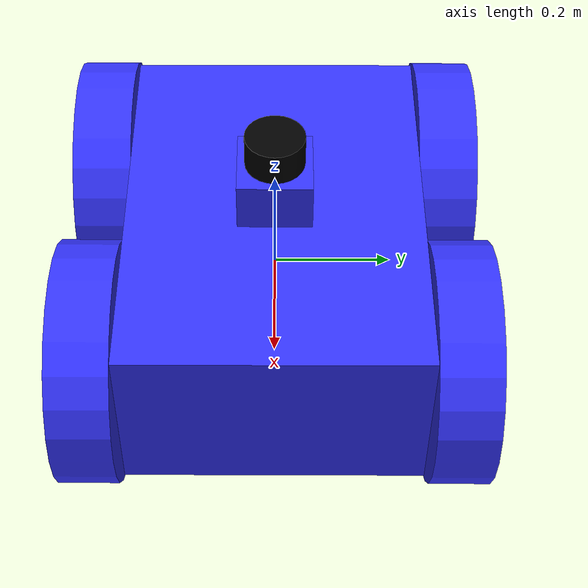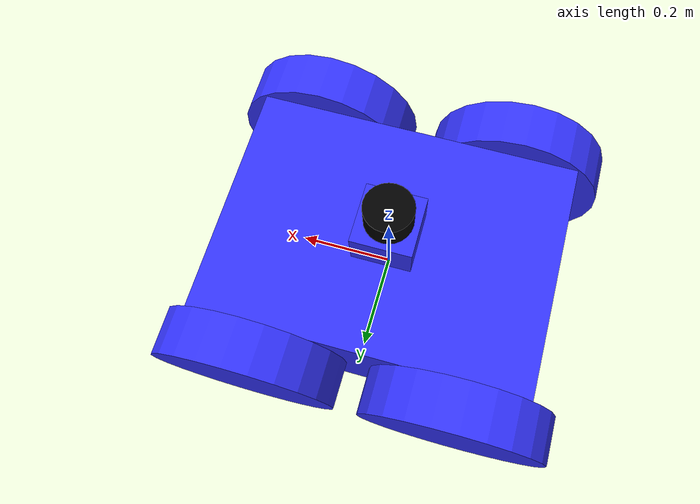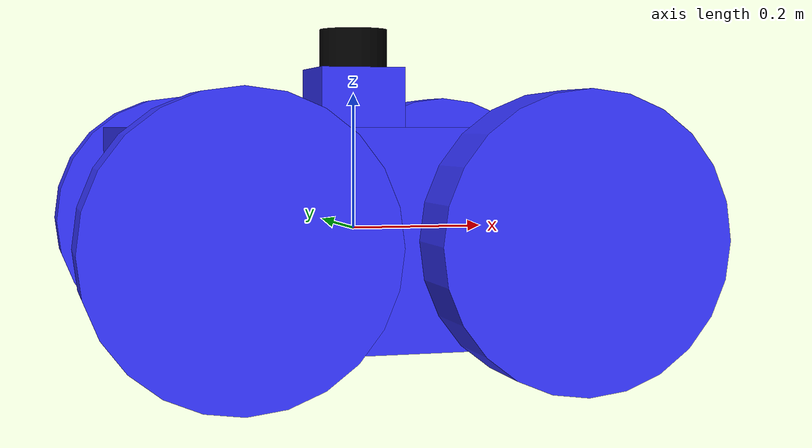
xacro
<?xml version="1.0"?>
<robot xmlns:xacro="http://www.ros.org/wiki/xacro" name="mybot">

    <xacro:include filename="$(find mybot)/urdf/skid_steering.xacro" />
    <xacro:include filename="$(find mybot)/urdf/robot_colors.xacro" />
    <xacro:include filename="$(find mybot)/urdf/lidar.xacro" />

    <!-- Wheels -->
    <xacro:macro name="wheel" params="prefix x y rpy axis">
        <joint name="${prefix}_wheel_joint" type="continuous">
            <parent link="base_link"/>
            <child link="${prefix}_wheel"/>
            <origin xyz="${x} ${y} 0" rpy="${rpy} 0 0"/>
            <axis xyz="${axis}"/>
        </joint>

        <link name="${prefix}_wheel">
            <visual>
                <geometry>
                    <cylinder radius="0.2" length="0.1"/>
                </geometry>
                <material name="blue"/>
            </visual>
            <collision>
                <geometry>
                    <cylinder radius="0.2" length="0.1"/>
                </geometry>
            </collision>
            <inertial>
                <origin xyz="0 0 0" rpy="0 0 0"/>
                <mass value="1.0"/>
                <inertia ixx="0.01083" ixy="0.0" ixz="0.0" iyy="0.01083" iyz="0.0" izz="0.02"/>
            </inertial>
        </link>
    </xacro:macro>

    <xacro:wheel prefix="front_left" x="0.225" y="0.3" rpy="-1.5708" axis="0 0 1"/>
    <xacro:wheel prefix="front_right" x="0.225" y="-0.3" rpy="1.5708" axis="0 0 -1"/>
    <xacro:wheel prefix="rear_left" x="-0.225" y="0.3" rpy="-1.5708" axis="0 0 1"/>
    <xacro:wheel prefix="rear_right" x="-0.225" y="-0.3" rpy="1.5708" axis="0 0 -1"/>

    <!-- footprint -->
    <link name="robot_footprint"/>
    <joint name="robot_footprint_joint" type="fixed">
        <origin xyz="0 0 0" rpy="0 0 0" />
        <parent link="robot_footprint" />
        <child link="base_link" />
    </joint>

    <!-- BASE LINK -->
    <link name="base_link">
        <inertial>
            <origin xyz="0.0 0.0 0.0" rpy="0.0 0.0 1.5708"/>
            <mass value="15.0"/>
            <inertia ixx="0.725" ixy="0.0" ixz="0.0" iyy="0.425" iyz="0.0" izz="0.925"/>
        </inertial>
        <visual name="base_link">
            <geometry>
                <box size="0.7 0.5 0.3"/>
            </geometry>
            <origin xyz="0 0 0" rpy="0 0 0"/>
            <material name="blue">
                <color rgba="0.2 0.2 1 1"/>
            </material>
        </visual>
        <collision>
            <geometry>
                <box size="0.7 0.5 0.3"/>
            </geometry>
            <origin xyz="0 0 0" rpy="0 0 0"/>
        </collision>
    </link>

    <!-- lidar_holder -->
    <joint name="lidar_holder_joint" type="fixed">
        <parent link="base_link"/>
        <child link="lidar_holder"/>
        <origin xyz="0.0 0 0.175" rpy="0 0 0"/>
    </joint>
    <link name="lidar_holder">
        <visual>
            <geometry>
                <box size="0.125 0.125 0.125"/>
            </geometry>
            <material name="blue">
            </material>
        </visual>
        <collision>
            <geometry>
                <box size="0.125 0.125 0.125"/>
            </geometry>
        </collision>
    </link>

</robot>

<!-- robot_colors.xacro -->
<robot xmlns:xacro="http://www.ros.org/wiki/xacro" name="mybot">

     <!-- Color Reference -->
    <gazebo reference="base_link">
        <material>Gazebo/Blue</material>
    </gazebo>

    <gazebo reference="front_left_wheel">
        <material>Gazebo/Black</material>
    </gazebo>
    <gazebo reference="front_right_wheel">
        <material>Gazebo/Black</material>
    </gazebo>
    <gazebo reference="rear_left_wheel">
        <material>Gazebo/Black</material>
    </gazebo>
    <gazebo reference="rear_right_wheel">
        <material>Gazebo/Black</material>
    </gazebo>
    <gazebo reference="lidar_holder">
        <material>Gazebo/Black</material>
    </gazebo>
    <gazebo reference="lidar">
        <material>Gazebo/Red</material>
    </gazebo>

    <!-- Material Color -->
    <material name="blue">
        <color rgba="0.2 0.2 1 1"/>
    </material>

    <material name="black">
        <color rgba="0 0 0 1"/>
    </material>

</robot>

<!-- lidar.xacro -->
<robot xmlns:xacro="http://www.ros.org/wiki/xacro" name="mybot">

     <!-- Lidar -->
    <joint name="lidar_joint" type="fixed">
        <parent link="lidar_holder"/>
        <child link="lidar"/>
        <origin xyz="0.0 0 0.07" rpy="0 0 0"/>
    </joint>

    <link name="lidar">
        <visual>
            <geometry>
                <cylinder radius="0.05" length="0.1"/>
            </geometry>
            <material name="black"/>
        </visual>
        <collision>
            <geometry>
                <cylinder radius="0.05" length="0.4"/>
            </geometry>
        </collision>
    </link>

    <gazebo reference="lidar">
        <sensor type="ray" name="laser">
            <pose>0 0 0 0 0 0</pose>
            <visualize>false</visualize>
            <update_rate>40</update_rate>
            <ray>
                <scan>
                <horizontal>
                    <samples>720</samples>
                    <resolution>1</resolution>
                    <min_angle>-3.14159</min_angle>
                    <max_angle>3.14159*2</max_angle>
                </horizontal>
                </scan>
                <range>
                    <min>0.10</min>
                    <max>8.0</max>
                    <resolution>0.01</resolution>
                </range>
                <noise>
                    <type>gaussian</type>
                    <mean>0.0</mean>
                    <stddev>0.01</stddev>
                </noise>
            </ray>
            <plugin name="gazebo_ros_head_hokuyo_controller" filename="libgazebo_ros_laser.so">
                <topicName>/scan</topicName>
                <frameName>lidar</frameName>
            </plugin>
        </sensor>
  </gazebo>
</robot>
